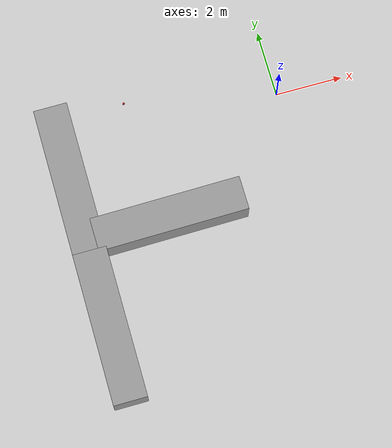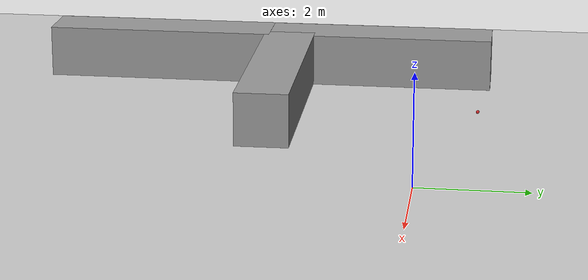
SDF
<sdf version="1.6">
 <world name="default">
  <model name="ground_plane">
   <static>1</static>
   <link name="link">
    <collision name="collision">
     <geometry><plane><normal>0 0 1</normal><size>100 100</size></plane></geometry>
     <surface><friction><ode><mu>100</mu><mu2>50</mu2></ode></friction></surface>
    </collision>
    <visual name="visual">
     <cast_shadows>0</cast_shadows>
     <geometry><plane><normal>0 0 1</normal><size>100 100</size></plane></geometry>
     <material>
      <script><uri>file://media/materials/scripts/gazebo.material</uri><name>Gazebo/Grey</name></script>
     </material>
    </visual>
   </link>
  </model>
  <model name="RoboCup SPL Ball_6">
   <static>0</static>
   <link name="ball">
    <inertial>
     <mass>0.0056</mass>
     <inertia>
      <ixx>2.37e-06</ixx>
      <iyy>2.37e-06</iyy>
      <izz>2.37e-06</izz>
      <ixy>0</ixy>
      <ixz>0</ixz>
      <iyz>0</iyz>
     </inertia>
    </inertial>
    <collision name="collision"><geometry><sphere><radius>0.0325</radius></sphere></geometry></collision>
    <visual name="visual">
     <geometry><sphere><radius>0.0325</radius></sphere></geometry>
     <material>
      <script><uri>file://media/materials/scripts/gazebo.material</uri><name>Gazebo/RedBright</name></script>
     </material>
    </visual>
   </link>
   <pose>-4.45617 0.96714 0.0325 0 -0 0</pose>
  </model>
  <model name="unit_box_0_clone_0_0">
   <link name="link">
    <inertial>
     <mass>1</mass>
     <inertia>
      <ixx>0.166667</ixx>
      <ixy>0</ixy>
      <ixz>0</ixz>
      <iyy>0.166667</iyy>
      <iyz>0</iyz>
      <izz>0.166667</izz>
     </inertia>
    </inertial>
    <visual name="visual">
     <geometry><box><size>1 4.48154 1</size></box></geometry>
     <material>
      <script><name>Gazebo/Grey</name><uri>file://media/materials/scripts/gazebo.material</uri></script>
      <ambient>0.3 0.3 0.3 1</ambient>
      <diffuse>0.7 0.7 0.7 1</diffuse>
      <specular>0.01 0.01 0.01 1</specular>
      <emissive>0 0 0 1</emissive>
     </material>
    </visual>
    <collision name="collision">
     <geometry><box><size>1 4.48154 1</size></box></geometry>
     <surface>
      <friction>
       <ode><mu>1</mu><mu2>1</mu2><fdir1>0 0 0</fdir1><slip1>0</slip1><slip2>0</slip2></ode>
       <torsional>
        <coefficient>1</coefficient>
        <patch_radius>0</patch_radius>
        <surface_radius>0</surface_radius>
        <use_patch_radius>1</use_patch_radius>
        <ode><slip>0</slip></ode>
       </torsional>
      </friction>
      <bounce><restitution_coefficient>0</restitution_coefficient><threshold>1e+06</threshold></bounce>
      <contact>
       <collide_without_contact>0</collide_without_contact>
       <collide_without_contact_bitmask>1</collide_without_contact_bitmask>
       <collide_bitmask>1</collide_bitmask>
       <ode>
        <soft_cfm>0</soft_cfm>
        <soft_erp>0.2</soft_erp>
        <kp>1e+13</kp>
        <kd>1</kd>
        <max_vel>0.01</max_vel>
        <min_depth>0</min_depth>
       </ode>
       <bullet>
        <split_impulse>1</split_impulse>
        <split_impulse_penetration_threshold>-0.01</split_impulse_penetration_threshold>
        <soft_cfm>0</soft_cfm>
        <soft_erp>0.2</soft_erp>
        <kp>1e+13</kp>
        <kd>1</kd>
       </bullet>
      </contact>
     </surface>
    </collision>
   </link>
   <static>1</static>
   <pose>-6.5853 -1.08093 0.49872 -3.14102 -0 -3e-06</pose>
  </model>
  <model name="unit_box_0_clone_0_0_clone_clone_0">
   <link name="link">
    <inertial>
     <mass>1</mass>
     <inertia>
      <ixx>0.166667</ixx>
      <ixy>0</ixy>
      <ixz>0</ixz>
      <iyy>0.166667</iyy>
      <iyz>0</iyz>
      <izz>0.166667</izz>
     </inertia>
    </inertial>
    <visual name="visual">
     <geometry><box><size>1 4.48154 1</size></box></geometry>
     <material>
      <script><name>Gazebo/Grey</name><uri>file://media/materials/scripts/gazebo.material</uri></script>
      <ambient>0.3 0.3 0.3 1</ambient>
      <diffuse>0.7 0.7 0.7 1</diffuse>
      <specular>0.01 0.01 0.01 1</specular>
      <emissive>0 0 0 1</emissive>
     </material>
    </visual>
    <collision name="collision">
     <geometry><box><size>1 4.48154 1</size></box></geometry>
     <surface>
      <friction>
       <ode><mu>1</mu><mu2>1</mu2><fdir1>0 0 0</fdir1><slip1>0</slip1><slip2>0</slip2></ode>
       <torsional>
        <coefficient>1</coefficient>
        <patch_radius>0</patch_radius>
        <surface_radius>0</surface_radius>
        <use_patch_radius>1</use_patch_radius>
        <ode><slip>0</slip></ode>
       </torsional>
      </friction>
      <bounce><restitution_coefficient>0</restitution_coefficient><threshold>1e+06</threshold></bounce>
      <contact>
       <collide_without_contact>0</collide_without_contact>
       <collide_without_contact_bitmask>1</collide_without_contact_bitmask>
       <collide_bitmask>1</collide_bitmask>
       <ode>
        <soft_cfm>0</soft_cfm>
        <soft_erp>0.2</soft_erp>
        <kp>1e+13</kp>
        <kd>1</kd>
        <max_vel>0.01</max_vel>
        <min_depth>0</min_depth>
       </ode>
       <bullet>
        <split_impulse>1</split_impulse>
        <split_impulse_penetration_threshold>-0.01</split_impulse_penetration_threshold>
        <soft_cfm>0</soft_cfm>
        <soft_erp>0.2</soft_erp>
        <kp>1e+13</kp>
        <kd>1</kd>
       </bullet>
      </contact>
     </surface>
    </collision>
   </link>
   <static>1</static>
   <pose>-6.58716 -5.52468 0.49872 -3.14102 -0 -3e-06</pose>
  </model>
  <model name="unit_box_0_clone_0_0_clone_clone_0_clone">
   <link name="link">
    <inertial>
     <mass>1</mass>
     <inertia>
      <ixx>0.166667</ixx>
      <ixy>0</ixy>
      <ixz>0</ixz>
      <iyy>0.166667</iyy>
      <iyz>0</iyz>
      <izz>0.166667</izz>
     </inertia>
    </inertial>
    <visual name="visual">
     <geometry><box><size>1 4.48154 1</size></box></geometry>
     <material>
      <script><name>Gazebo/Grey</name><uri>file://media/materials/scripts/gazebo.material</uri></script>
      <ambient>0.3 0.3 0.3 1</ambient>
      <diffuse>0.7 0.7 0.7 1</diffuse>
      <specular>0.01 0.01 0.01 1</specular>
      <emissive>0 0 0 1</emissive>
     </material>
    </visual>
    <collision name="collision">
     <geometry><box><size>1 4.48154 1</size></box></geometry>
     <surface>
      <friction>
       <ode><mu>1</mu><mu2>1</mu2><fdir1>0 0 0</fdir1><slip1>0</slip1><slip2>0</slip2></ode>
       <torsional>
        <coefficient>1</coefficient>
        <patch_radius>0</patch_radius>
        <surface_radius>0</surface_radius>
        <use_patch_radius>1</use_patch_radius>
        <ode><slip>0</slip></ode>
       </torsional>
      </friction>
      <bounce><restitution_coefficient>0</restitution_coefficient><threshold>1e+06</threshold></bounce>
      <contact>
       <collide_without_contact>0</collide_without_contact>
       <collide_without_contact_bitmask>1</collide_without_contact_bitmask>
       <collide_bitmask>1</collide_bitmask>
       <ode>
        <soft_cfm>0</soft_cfm>
        <soft_erp>0.2</soft_erp>
        <kp>1e+13</kp>
        <kd>1</kd>
        <max_vel>0.01</max_vel>
        <min_depth>0</min_depth>
       </ode>
       <bullet>
        <split_impulse>1</split_impulse>
        <split_impulse_penetration_threshold>-0.01</split_impulse_penetration_threshold>
        <soft_cfm>0</soft_cfm>
        <soft_erp>0.2</soft_erp>
        <kp>1e+13</kp>
        <kd>1</kd>
       </bullet>
      </contact>
     </surface>
    </collision>
   </link>
   <static>1</static>
   <pose>-4.09401 -2.85713 0.49975 3.14159 -0.000573 1.58078</pose>
  </model>
 </world>
</sdf>
